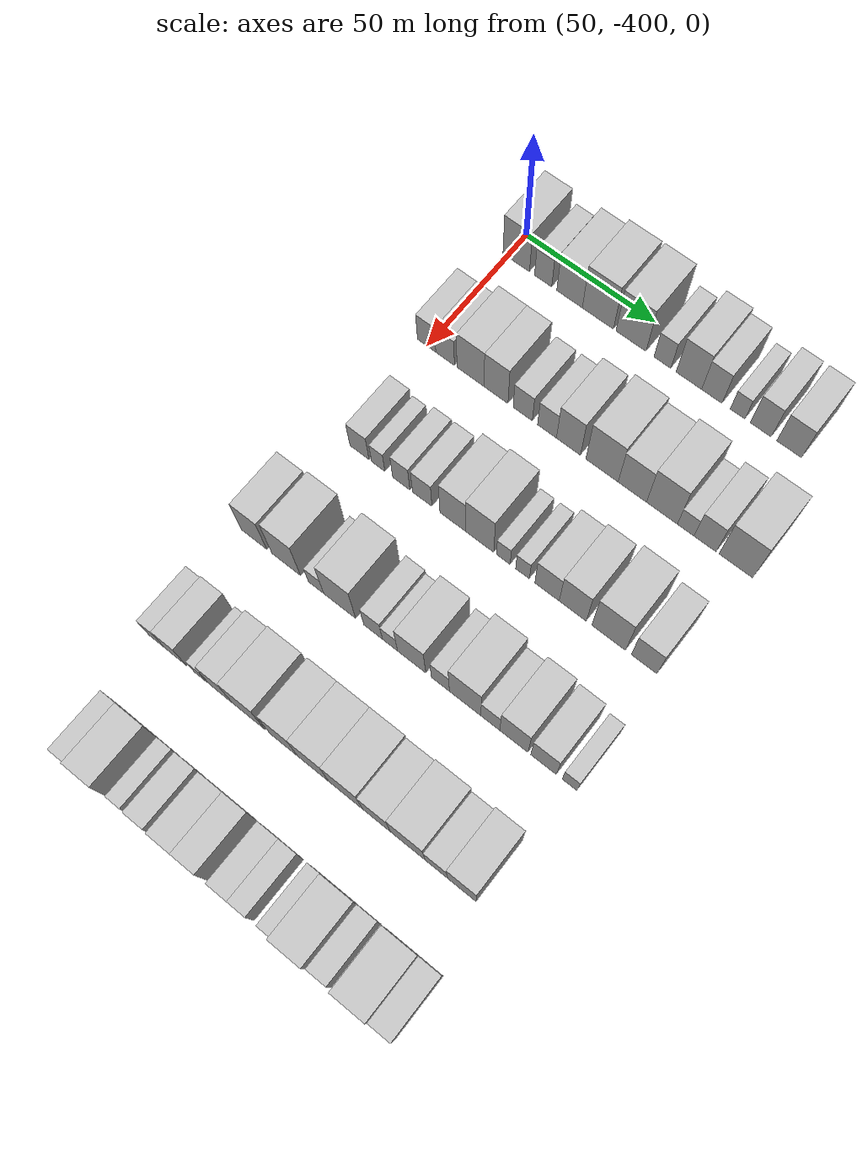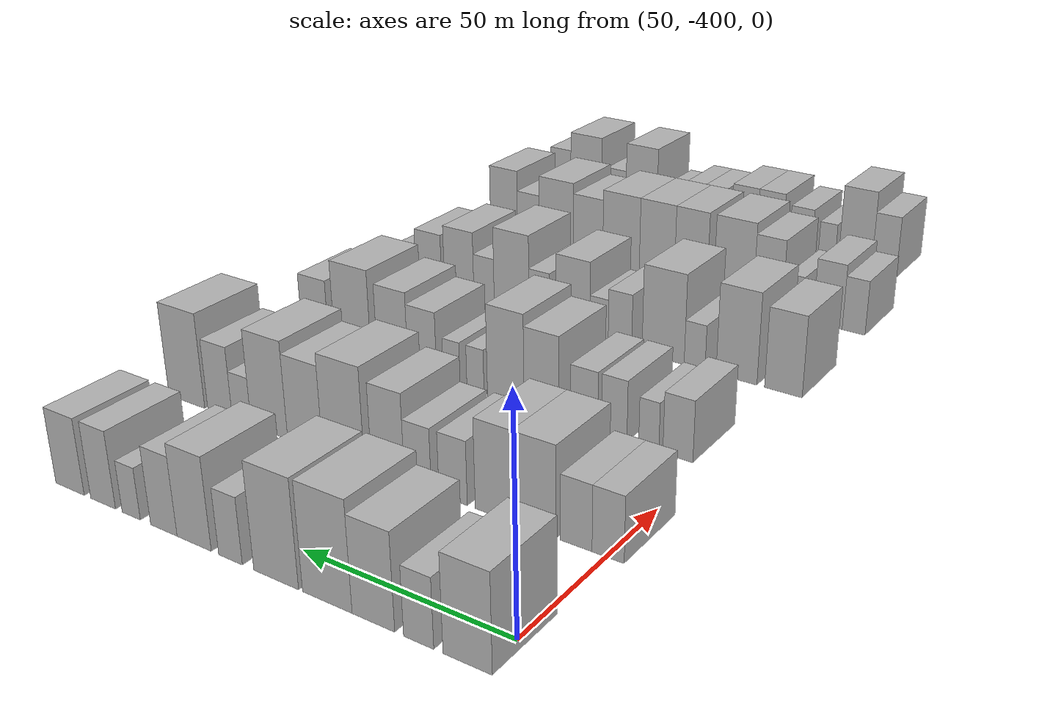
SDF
<sdf version="1.6">
 <world name="default">
  <model name="building_25">
   <static>1</static>
   <pose>50.0000 -396.6169 0 0.000000 0.000000 0.000000</pose>
   <link name="link">
    <pose>0 0 10.50 0 0 0</pose>
    <collision name="collision"><geometry><box><size>20.0000 10.4796 21.0000</size></box></geometry></collision>
    <visual name="visual">
     <cast_shadows>0</cast_shadows>
     <geometry><box><size>20.0000 10.4796 21.0000</size></box></geometry>
     <material>
      <script>
       <uri>model://HANNAS_wall/materials/scripts</uri>
       <uri>model://HANNAS_wall/materials/textures</uri>
       <name>vrc/HANNAS_wall</name>
      </script>
     </material>
    </visual>
   </link>
  </model>
  <model name="building_26">
   <static>1</static>
   <pose>50.0000 -386.0305 0 0.000000 0.000000 0.000000</pose>
   <link name="link">
    <pose>0 0 7.50 0 0 0</pose>
    <collision name="collision"><geometry><box><size>20.0000 6.6933 15.0000</size></box></geometry></collision>
    <visual name="visual">
     <cast_shadows>0</cast_shadows>
     <geometry><box><size>20.0000 6.6933 15.0000</size></box></geometry>
     <material>
      <script>
       <uri>model://HANNAS_wall/materials/scripts</uri>
       <uri>model://HANNAS_wall/materials/textures</uri>
       <name>vrc/HANNAS_wall</name>
      </script>
     </material>
    </visual>
   </link>
  </model>
  <model name="building_27">
   <static>1</static>
   <pose>50.0000 -375.7547 0 0.000000 0.000000 0.000000</pose>
   <link name="link">
    <pose>0 0 10.50 0 0 0</pose>
    <collision name="collision"><geometry><box><size>20.0000 9.8581 21.0000</size></box></geometry></collision>
    <visual name="visual">
     <cast_shadows>0</cast_shadows>
     <geometry><box><size>20.0000 9.8581 21.0000</size></box></geometry>
     <material>
      <script>
       <uri>model://HANNAS_wall/materials/scripts</uri>
       <uri>model://HANNAS_wall/materials/textures</uri>
       <name>vrc/HANNAS_wall</name>
      </script>
     </material>
    </visual>
   </link>
  </model>
  <model name="building_28">
   <static>1</static>
   <pose>50.0000 -364.8453 0 0.000000 0.000000 0.000000</pose>
   <link name="link">
    <pose>0 0 12.00 0 0 0</pose>
    <collision name="collision"><geometry><box><size>20.0000 11.9608 24.0000</size></box></geometry></collision>
    <visual name="visual">
     <cast_shadows>0</cast_shadows>
     <geometry><box><size>20.0000 11.9608 24.0000</size></box></geometry>
     <material>
      <script>
       <uri>model://HANNAS_wall/materials/scripts</uri>
       <uri>model://HANNAS_wall/materials/textures</uri>
       <name>vrc/HANNAS_wall</name>
      </script>
     </material>
    </visual>
   </link>
  </model>
  <model name="building_29">
   <static>1</static>
   <pose>50.0000 -352.1958 0 0.000000 0.000000 0.000000</pose>
   <link name="link">
    <pose>0 0 12.00 0 0 0</pose>
    <collision name="collision"><geometry><box><size>20.0000 11.3382 24.0000</size></box></geometry></collision>
    <visual name="visual">
     <cast_shadows>0</cast_shadows>
     <geometry><box><size>20.0000 11.3382 24.0000</size></box></geometry>
     <material>
      <script>
       <uri>model://HANNAS_wall/materials/scripts</uri>
       <uri>model://HANNAS_wall/materials/textures</uri>
       <name>vrc/HANNAS_wall</name>
      </script>
     </material>
    </visual>
   </link>
  </model>
  <model name="building_30">
   <static>1</static>
   <pose>50.0000 -340.3901 0 0.000000 0.000000 0.000000</pose>
   <link name="link">
    <pose>0 0 7.50 0 0 0</pose>
    <collision name="collision"><geometry><box><size>20.0000 6.2733 15.0000</size></box></geometry></collision>
    <visual name="visual">
     <cast_shadows>0</cast_shadows>
     <geometry><box><size>20.0000 6.2733 15.0000</size></box></geometry>
     <material>
      <script>
       <uri>model://HANNAS_wall/materials/scripts</uri>
       <uri>model://HANNAS_wall/materials/textures</uri>
       <name>vrc/HANNAS_wall</name>
      </script>
     </material>
    </visual>
   </link>
  </model>
  <model name="building_31">
   <static>1</static>
   <pose>50.0000 -330.5463 0 0.000000 0.000000 0.000000</pose>
   <link name="link">
    <pose>0 0 10.50 0 0 0</pose>
    <collision name="collision"><geometry><box><size>20.0000 9.4141 21.0000</size></box></geometry></collision>
    <visual name="visual">
     <cast_shadows>0</cast_shadows>
     <geometry><box><size>20.0000 9.4141 21.0000</size></box></geometry>
     <material>
      <script>
       <uri>model://HANNAS_wall/materials/scripts</uri>
       <uri>model://HANNAS_wall/materials/textures</uri>
       <name>vrc/HANNAS_wall</name>
      </script>
     </material>
    </visual>
   </link>
  </model>
  <model name="building_32">
   <static>1</static>
   <pose>50.0000 -322.0904 0 0.000000 0.000000 0.000000</pose>
   <link name="link">
    <pose>0 0 9.00 0 0 0</pose>
    <collision name="collision"><geometry><box><size>20.0000 7.4976 18.0000</size></box></geometry></collision>
    <visual name="visual">
     <cast_shadows>0</cast_shadows>
     <geometry><box><size>20.0000 7.4976 18.0000</size></box></geometry>
     <material>
      <script>
       <uri>model://HANNAS_wall/materials/scripts</uri>
       <uri>model://HANNAS_wall/materials/textures</uri>
       <name>vrc/HANNAS_wall</name>
      </script>
     </material>
    </visual>
   </link>
  </model>
  <model name="building_33">
   <static>1</static>
   <pose>50.0000 -312.6850 0 0.000000 0.000000 0.000000</pose>
   <link name="link">
    <pose>0 0 6.00 0 0 0</pose>
    <collision name="collision"><geometry><box><size>20.0000 5.3132 12.0000</size></box></geometry></collision>
    <visual name="visual">
     <cast_shadows>0</cast_shadows>
     <geometry><box><size>20.0000 5.3132 12.0000</size></box></geometry>
     <material>
      <script>
       <uri>model://HANNAS_wall/materials/scripts</uri>
       <uri>model://HANNAS_wall/materials/textures</uri>
       <name>vrc/HANNAS_wall</name>
      </script>
     </material>
    </visual>
   </link>
  </model>
  <model name="building_34">
   <static>1</static>
   <pose>50.0000 -304.2819 0 0.000000 0.000000 0.000000</pose>
   <link name="link">
    <pose>0 0 9.00 0 0 0</pose>
    <collision name="collision"><geometry><box><size>20.0000 7.4931 18.0000</size></box></geometry></collision>
    <visual name="visual">
     <cast_shadows>0</cast_shadows>
     <geometry><box><size>20.0000 7.4931 18.0000</size></box></geometry>
     <material>
      <script>
       <uri>model://HANNAS_wall/materials/scripts</uri>
       <uri>model://HANNAS_wall/materials/textures</uri>
       <name>vrc/HANNAS_wall</name>
      </script>
     </material>
    </visual>
   </link>
  </model>
  <model name="building_35">
   <static>1</static>
   <pose>50.0000 -294.1068 0 0.000000 0.000000 0.000000</pose>
   <link name="link">
    <pose>0 0 9.00 0 0 0</pose>
    <collision name="collision"><geometry><box><size>20.0000 8.8571 18.0000</size></box></geometry></collision>
    <visual name="visual">
     <cast_shadows>0</cast_shadows>
     <geometry><box><size>20.0000 8.8571 18.0000</size></box></geometry>
     <material>
      <script>
       <uri>model://HANNAS_wall/materials/scripts</uri>
       <uri>model://HANNAS_wall/materials/textures</uri>
       <name>vrc/HANNAS_wall</name>
      </script>
     </material>
    </visual>
   </link>
  </model>
  <model name="building_164">
   <static>1</static>
   <pose>90.0000 -400.3614 0 0.000000 0.000000 0.000000</pose>
   <link name="link">
    <pose>0 0 7.50 0 0 0</pose>
    <collision name="collision"><geometry><box><size>20.0000 7.2031 15.0000</size></box></geometry></collision>
    <visual name="visual">
     <cast_shadows>0</cast_shadows>
     <geometry><box><size>20.0000 7.2031 15.0000</size></box></geometry>
     <material>
      <script>
       <uri>model://HANNAS_wall/materials/scripts</uri>
       <uri>model://HANNAS_wall/materials/textures</uri>
       <name>vrc/HANNAS_wall</name>
      </script>
     </material>
    </visual>
   </link>
  </model>
  <model name="building_165">
   <static>1</static>
   <pose>90.0000 -393.1324 0 0.000000 0.000000 0.000000</pose>
   <link name="link">
    <pose>0 0 7.50 0 0 0</pose>
    <collision name="collision"><geometry><box><size>20.0000 7.2549 15.0000</size></box></geometry></collision>
    <visual name="visual">
     <cast_shadows>0</cast_shadows>
     <geometry><box><size>20.0000 7.2549 15.0000</size></box></geometry>
     <material>
      <script>
       <uri>model://HANNAS_wall/materials/scripts</uri>
       <uri>model://HANNAS_wall/materials/textures</uri>
       <name>vrc/HANNAS_wall</name>
      </script>
     </material>
    </visual>
   </link>
  </model>
  <model name="building_166">
   <static>1</static>
   <pose>90.0000 -383.2914 0 0.000000 0.000000 0.000000</pose>
   <link name="link">
    <pose>0 0 10.50 0 0 0</pose>
    <collision name="collision"><geometry><box><size>20.0000 10.4272 21.0000</size></box></geometry></collision>
    <visual name="visual">
     <cast_shadows>0</cast_shadows>
     <geometry><box><size>20.0000 10.4272 21.0000</size></box></geometry>
     <material>
      <script>
       <uri>model://HANNAS_wall/materials/scripts</uri>
       <uri>model://HANNAS_wall/materials/textures</uri>
       <name>vrc/HANNAS_wall</name>
      </script>
     </material>
    </visual>
   </link>
  </model>
  <model name="building_167">
   <static>1</static>
   <pose>90.0000 -373.4937 0 0.000000 0.000000 0.000000</pose>
   <link name="link">
    <pose>0 0 10.50 0 0 0</pose>
    <collision name="collision"><geometry><box><size>20.0000 9.1681 21.0000</size></box></geometry></collision>
    <visual name="visual">
     <cast_shadows>0</cast_shadows>
     <geometry><box><size>20.0000 9.1681 21.0000</size></box></geometry>
     <material>
      <script>
       <uri>model://HANNAS_wall/materials/scripts</uri>
       <uri>model://HANNAS_wall/materials/textures</uri>
       <name>vrc/HANNAS_wall</name>
      </script>
     </material>
    </visual>
   </link>
  </model>
  <model name="building_168">
   <static>1</static>
   <pose>90.0000 -363.2926 0 0.000000 0.000000 0.000000</pose>
   <link name="link">
    <pose>0 0 7.50 0 0 0</pose>
    <collision name="collision"><geometry><box><size>20.0000 7.2341 15.0000</size></box></geometry></collision>
    <visual name="visual">
     <cast_shadows>0</cast_shadows>
     <geometry><box><size>20.0000 7.2341 15.0000</size></box></geometry>
     <material>
      <script>
       <uri>model://HANNAS_wall/materials/scripts</uri>
       <uri>model://HANNAS_wall/materials/textures</uri>
       <name>vrc/HANNAS_wall</name>
      </script>
     </material>
    </visual>
   </link>
  </model>
  <model name="building_169">
   <static>1</static>
   <pose>90.0000 -354.1387 0 0.000000 0.000000 0.000000</pose>
   <link name="link">
    <pose>0 0 7.50 0 0 0</pose>
    <collision name="collision"><geometry><box><size>20.0000 7.0738 15.0000</size></box></geometry></collision>
    <visual name="visual">
     <cast_shadows>0</cast_shadows>
     <geometry><box><size>20.0000 7.0738 15.0000</size></box></geometry>
     <material>
      <script>
       <uri>model://HANNAS_wall/materials/scripts</uri>
       <uri>model://HANNAS_wall/materials/textures</uri>
       <name>vrc/HANNAS_wall</name>
      </script>
     </material>
    </visual>
   </link>
  </model>
  <model name="building_170">
   <static>1</static>
   <pose>90.0000 -346.1334 0 0.000000 0.000000 0.000000</pose>
   <link name="link">
    <pose>0 0 10.50 0 0 0</pose>
    <collision name="collision"><geometry><box><size>20.0000 8.9368 21.0000</size></box></geometry></collision>
    <visual name="visual">
     <cast_shadows>0</cast_shadows>
     <geometry><box><size>20.0000 8.9368 21.0000</size></box></geometry>
     <material>
      <script>
       <uri>model://HANNAS_wall/materials/scripts</uri>
       <uri>model://HANNAS_wall/materials/textures</uri>
       <name>vrc/HANNAS_wall</name>
      </script>
     </material>
    </visual>
   </link>
  </model>
  <model name="building_171">
   <static>1</static>
   <pose>90.0000 -333.7488 0 0.000000 0.000000 0.000000</pose>
   <link name="link">
    <pose>0 0 12.00 0 0 0</pose>
    <collision name="collision"><geometry><box><size>20.0000 11.8323 24.0000</size></box></geometry></collision>
    <visual name="visual">
     <cast_shadows>0</cast_shadows>
     <geometry><box><size>20.0000 11.8323 24.0000</size></box></geometry>
     <material>
      <script>
       <uri>model://HANNAS_wall/materials/scripts</uri>
       <uri>model://HANNAS_wall/materials/textures</uri>
       <name>vrc/HANNAS_wall</name>
      </script>
     </material>
    </visual>
   </link>
  </model>
  <model name="building_172">
   <static>1</static>
   <pose>90.0000 -322.6806 0 0.000000 0.000000 0.000000</pose>
   <link name="link">
    <pose>0 0 10.50 0 0 0</pose>
    <collision name="collision"><geometry><box><size>20.0000 10.3041 21.0000</size></box></geometry></collision>
    <visual name="visual">
     <cast_shadows>0</cast_shadows>
     <geometry><box><size>20.0000 10.3041 21.0000</size></box></geometry>
     <material>
      <script>
       <uri>model://HANNAS_wall/materials/scripts</uri>
       <uri>model://HANNAS_wall/materials/textures</uri>
       <name>vrc/HANNAS_wall</name>
      </script>
     </material>
    </visual>
   </link>
  </model>
  <model name="building_173">
   <static>1</static>
   <pose>90.0000 -311.9880 0 0.000000 0.000000 0.000000</pose>
   <link name="link">
    <pose>0 0 12.00 0 0 0</pose>
    <collision name="collision"><geometry><box><size>20.0000 11.0812 24.0000</size></box></geometry></collision>
    <visual name="visual">
     <cast_shadows>0</cast_shadows>
     <geometry><box><size>20.0000 11.0812 24.0000</size></box></geometry>
     <material>
      <script>
       <uri>model://HANNAS_wall/materials/scripts</uri>
       <uri>model://HANNAS_wall/materials/textures</uri>
       <name>vrc/HANNAS_wall</name>
      </script>
     </material>
    </visual>
   </link>
  </model>
  <model name="building_174">
   <static>1</static>
   <pose>90.0000 -303.4889 0 0.000000 0.000000 0.000000</pose>
   <link name="link">
    <pose>0 0 6.00 0 0 0</pose>
    <collision name="collision"><geometry><box><size>20.0000 5.9170 12.0000</size></box></geometry></collision>
    <visual name="visual">
     <cast_shadows>0</cast_shadows>
     <geometry><box><size>20.0000 5.9170 12.0000</size></box></geometry>
     <material>
      <script>
       <uri>model://HANNAS_wall/materials/scripts</uri>
       <uri>model://HANNAS_wall/materials/textures</uri>
       <name>vrc/HANNAS_wall</name>
      </script>
     </material>
    </visual>
   </link>
  </model>
  <model name="building_175">
   <static>1</static>
   <pose>90.0000 -296.6169 0 0.000000 0.000000 0.000000</pose>
   <link name="link">
    <pose>0 0 9.00 0 0 0</pose>
    <collision name="collision"><geometry><box><size>20.0000 7.8270 18.0000</size></box></geometry></collision>
    <visual name="visual">
     <cast_shadows>0</cast_shadows>
     <geometry><box><size>20.0000 7.8270 18.0000</size></box></geometry>
     <material>
      <script>
       <uri>model://HANNAS_wall/materials/scripts</uri>
       <uri>model://HANNAS_wall/materials/textures</uri>
       <name>vrc/HANNAS_wall</name>
      </script>
     </material>
    </visual>
   </link>
  </model>
  <model name="building_176">
   <static>1</static>
   <pose>90.0000 -285.8104 0 0.000000 0.000000 0.000000</pose>
   <link name="link">
    <pose>0 0 12.00 0 0 0</pose>
    <collision name="collision"><geometry><box><size>20.0000 11.7860 24.0000</size></box></geometry></collision>
    <visual name="visual">
     <cast_shadows>0</cast_shadows>
     <geometry><box><size>20.0000 11.7860 24.0000</size></box></geometry>
     <material>
      <script>
       <uri>model://HANNAS_wall/materials/scripts</uri>
       <uri>model://HANNAS_wall/materials/textures</uri>
       <name>vrc/HANNAS_wall</name>
      </script>
     </material>
    </visual>
   </link>
  </model>
  <model name="building_298">
   <static>1</static>
   <pose>130.0000 -393.6359 0 0.000000 0.000000 0.000000</pose>
   <link name="link">
    <pose>0 0 7.50 0 0 0</pose>
    <collision name="collision"><geometry><box><size>20.0000 7.3688 15.0000</size></box></geometry></collision>
    <visual name="visual">
     <cast_shadows>0</cast_shadows>
     <geometry><box><size>20.0000 7.3688 15.0000</size></box></geometry>
     <material>
      <script>
       <uri>model://HANNAS_wall/materials/scripts</uri>
       <uri>model://HANNAS_wall/materials/textures</uri>
       <name>vrc/HANNAS_wall</name>
      </script>
     </material>
    </visual>
   </link>
  </model>
  <model name="building_299">
   <static>1</static>
   <pose>130.0000 -386.4246 0 0.000000 0.000000 0.000000</pose>
   <link name="link">
    <pose>0 0 6.00 0 0 0</pose>
    <collision name="collision"><geometry><box><size>20.0000 5.0537 12.0000</size></box></geometry></collision>
    <visual name="visual">
     <cast_shadows>0</cast_shadows>
     <geometry><box><size>20.0000 5.0537 12.0000</size></box></geometry>
     <material>
      <script>
       <uri>model://HANNAS_wall/materials/scripts</uri>
       <uri>model://HANNAS_wall/materials/textures</uri>
       <name>vrc/HANNAS_wall</name>
      </script>
     </material>
    </visual>
   </link>
  </model>
  <model name="building_300">
   <static>1</static>
   <pose>130.0000 -377.6271 0 0.000000 0.000000 0.000000</pose>
   <link name="link">
    <pose>0 0 7.50 0 0 0</pose>
    <collision name="collision"><geometry><box><size>20.0000 6.5413 15.0000</size></box></geometry></collision>
    <visual name="visual">
     <cast_shadows>0</cast_shadows>
     <geometry><box><size>20.0000 6.5413 15.0000</size></box></geometry>
     <material>
      <script>
       <uri>model://HANNAS_wall/materials/scripts</uri>
       <uri>model://HANNAS_wall/materials/textures</uri>
       <name>vrc/HANNAS_wall</name>
      </script>
     </material>
    </visual>
   </link>
  </model>
  <model name="building_301">
   <static>1</static>
   <pose>130.0000 -369.7065 0 0.000000 0.000000 0.000000</pose>
   <link name="link">
    <pose>0 0 7.50 0 0 0</pose>
    <collision name="collision"><geometry><box><size>20.0000 7.2998 15.0000</size></box></geometry></collision>
    <visual name="visual">
     <cast_shadows>0</cast_shadows>
     <geometry><box><size>20.0000 7.2998 15.0000</size></box></geometry>
     <material>
      <script>
       <uri>model://HANNAS_wall/materials/scripts</uri>
       <uri>model://HANNAS_wall/materials/textures</uri>
       <name>vrc/HANNAS_wall</name>
      </script>
     </material>
    </visual>
   </link>
  </model>
  <model name="building_302">
   <static>1</static>
   <pose>130.0000 -358.2535 0 0.000000 0.000000 0.000000</pose>
   <link name="link">
    <pose>0 0 10.50 0 0 0</pose>
    <collision name="collision"><geometry><box><size>20.0000 9.6061 21.0000</size></box></geometry></collision>
    <visual name="visual">
     <cast_shadows>0</cast_shadows>
     <geometry><box><size>20.0000 9.6061 21.0000</size></box></geometry>
     <material>
      <script>
       <uri>model://HANNAS_wall/materials/scripts</uri>
       <uri>model://HANNAS_wall/materials/textures</uri>
       <name>vrc/HANNAS_wall</name>
      </script>
     </material>
    </visual>
   </link>
  </model>
  <model name="building_303">
   <static>1</static>
   <pose>130.0000 -348.2675 0 0.000000 0.000000 0.000000</pose>
   <link name="link">
    <pose>0 0 12.00 0 0 0</pose>
    <collision name="collision"><geometry><box><size>20.0000 10.3660 24.0000</size></box></geometry></collision>
    <visual name="visual">
     <cast_shadows>0</cast_shadows>
     <geometry><box><size>20.0000 10.3660 24.0000</size></box></geometry>
     <material>
      <script>
       <uri>model://HANNAS_wall/materials/scripts</uri>
       <uri>model://HANNAS_wall/materials/textures</uri>
       <name>vrc/HANNAS_wall</name>
      </script>
     </material>
    </visual>
   </link>
  </model>
  <model name="building_304">
   <static>1</static>
   <pose>130.0000 -339.5986 0 0.000000 0.000000 0.000000</pose>
   <link name="link">
    <pose>0 0 6.00 0 0 0</pose>
    <collision name="collision"><geometry><box><size>20.0000 4.9717 12.0000</size></box></geometry></collision>
    <visual name="visual">
     <cast_shadows>0</cast_shadows>
     <geometry><box><size>20.0000 4.9717 12.0000</size></box></geometry>
     <material>
      <script>
       <uri>model://HANNAS_wall/materials/scripts</uri>
       <uri>model://HANNAS_wall/materials/textures</uri>
       <name>vrc/HANNAS_wall</name>
      </script>
     </material>
    </visual>
   </link>
  </model>
  <model name="building_305">
   <static>1</static>
   <pose>130.0000 -332.6328 0 0.000000 0.000000 0.000000</pose>
   <link name="link">
    <pose>0 0 6.00 0 0 0</pose>
    <collision name="collision"><geometry><box><size>20.0000 4.9600 12.0000</size></box></geometry></collision>
    <visual name="visual">
     <cast_shadows>0</cast_shadows>
     <geometry><box><size>20.0000 4.9600 12.0000</size></box></geometry>
     <material>
      <script>
       <uri>model://HANNAS_wall/materials/scripts</uri>
       <uri>model://HANNAS_wall/materials/textures</uri>
       <name>vrc/HANNAS_wall</name>
      </script>
     </material>
    </visual>
   </link>
  </model>
  <model name="building_306">
   <static>1</static>
   <pose>130.0000 -323.7764 0 0.000000 0.000000 0.000000</pose>
   <link name="link">
    <pose>0 0 9.00 0 0 0</pose>
    <collision name="collision"><geometry><box><size>20.0000 8.7528 18.0000</size></box></geometry></collision>
    <visual name="visual">
     <cast_shadows>0</cast_shadows>
     <geometry><box><size>20.0000 8.7528 18.0000</size></box></geometry>
     <material>
      <script>
       <uri>model://HANNAS_wall/materials/scripts</uri>
       <uri>model://HANNAS_wall/materials/textures</uri>
       <name>vrc/HANNAS_wall</name>
      </script>
     </material>
    </visual>
   </link>
  </model>
  <model name="building_307">
   <static>1</static>
   <pose>130.0000 -314.5869 0 0.000000 0.000000 0.000000</pose>
   <link name="link">
    <pose>0 0 10.50 0 0 0</pose>
    <collision name="collision"><geometry><box><size>20.0000 9.6262 21.0000</size></box></geometry></collision>
    <visual name="visual">
     <cast_shadows>0</cast_shadows>
     <geometry><box><size>20.0000 9.6262 21.0000</size></box></geometry>
     <material>
      <script>
       <uri>model://HANNAS_wall/materials/scripts</uri>
       <uri>model://HANNAS_wall/materials/textures</uri>
       <name>vrc/HANNAS_wall</name>
      </script>
     </material>
    </visual>
   </link>
  </model>
  <model name="building_308">
   <static>1</static>
   <pose>130.0000 -301.8840 0 0.000000 0.000000 0.000000</pose>
   <link name="link">
    <pose>0 0 12.00 0 0 0</pose>
    <collision name="collision"><geometry><box><size>20.0000 11.7796 24.0000</size></box></geometry></collision>
    <visual name="visual">
     <cast_shadows>0</cast_shadows>
     <geometry><box><size>20.0000 11.7796 24.0000</size></box></geometry>
     <material>
      <script>
       <uri>model://HANNAS_wall/materials/scripts</uri>
       <uri>model://HANNAS_wall/materials/textures</uri>
       <name>vrc/HANNAS_wall</name>
      </script>
     </material>
    </visual>
   </link>
  </model>
  <model name="building_309">
   <static>1</static>
   <pose>130.0000 -289.5253 0 0.000000 0.000000 0.000000</pose>
   <link name="link">
    <pose>0 0 9.00 0 0 0</pose>
    <collision name="collision"><geometry><box><size>20.0000 8.9379 18.0000</size></box></geometry></collision>
    <visual name="visual">
     <cast_shadows>0</cast_shadows>
     <geometry><box><size>20.0000 8.9379 18.0000</size></box></geometry>
     <material>
      <script>
       <uri>model://HANNAS_wall/materials/scripts</uri>
       <uri>model://HANNAS_wall/materials/textures</uri>
       <name>vrc/HANNAS_wall</name>
      </script>
     </material>
    </visual>
   </link>
  </model>
  <model name="building_432">
   <static>1</static>
   <pose>170.0000 -399.9839 0 0.000000 0.000000 0.000000</pose>
   <link name="link">
    <pose>0 0 10.50 0 0 0</pose>
    <collision name="collision"><geometry><box><size>20.0000 9.6525 21.0000</size></box></geometry></collision>
    <visual name="visual">
     <cast_shadows>0</cast_shadows>
     <geometry><box><size>20.0000 9.6525 21.0000</size></box></geometry>
     <material>
      <script>
       <uri>model://HANNAS_wall/materials/scripts</uri>
       <uri>model://HANNAS_wall/materials/textures</uri>
       <name>vrc/HANNAS_wall</name>
      </script>
     </material>
    </visual>
   </link>
  </model>
  <model name="building_433">
   <static>1</static>
   <pose>170.0000 -387.7135 0 0.000000 0.000000 0.000000</pose>
   <link name="link">
    <pose>0 0 12.00 0 0 0</pose>
    <collision name="collision"><geometry><box><size>20.0000 10.8884 24.0000</size></box></geometry></collision>
    <visual name="visual">
     <cast_shadows>0</cast_shadows>
     <geometry><box><size>20.0000 10.8884 24.0000</size></box></geometry>
     <material>
      <script>
       <uri>model://HANNAS_wall/materials/scripts</uri>
       <uri>model://HANNAS_wall/materials/textures</uri>
       <name>vrc/HANNAS_wall</name>
      </script>
     </material>
    </visual>
   </link>
  </model>
  <model name="building_434">
   <static>1</static>
   <pose>170.0000 -376.3975 0 0.000000 0.000000 0.000000</pose>
   <link name="link">
    <pose>0 0 6.00 0 0 0</pose>
    <collision name="collision"><geometry><box><size>20.0000 5.7434 12.0000</size></box></geometry></collision>
    <visual name="visual">
     <cast_shadows>0</cast_shadows>
     <geometry><box><size>20.0000 5.7434 12.0000</size></box></geometry>
     <material>
      <script>
       <uri>model://HANNAS_wall/materials/scripts</uri>
       <uri>model://HANNAS_wall/materials/textures</uri>
       <name>vrc/HANNAS_wall</name>
      </script>
     </material>
    </visual>
   </link>
  </model>
  <model name="building_435">
   <static>1</static>
   <pose>170.0000 -367.5731 0 0.000000 0.000000 0.000000</pose>
   <link name="link">
    <pose>0 0 12.00 0 0 0</pose>
    <collision name="collision"><geometry><box><size>20.0000 11.9054 24.0000</size></box></geometry></collision>
    <visual name="visual">
     <cast_shadows>0</cast_shadows>
     <geometry><box><size>20.0000 11.9054 24.0000</size></box></geometry>
     <material>
      <script>
       <uri>model://HANNAS_wall/materials/scripts</uri>
       <uri>model://HANNAS_wall/materials/textures</uri>
       <name>vrc/HANNAS_wall</name>
      </script>
     </material>
    </visual>
   </link>
  </model>
  <model name="building_436">
   <static>1</static>
   <pose>170.0000 -355.1822 0 0.000000 0.000000 0.000000</pose>
   <link name="link">
    <pose>0 0 7.50 0 0 0</pose>
    <collision name="collision"><geometry><box><size>20.0000 6.8765 15.0000</size></box></geometry></collision>
    <visual name="visual">
     <cast_shadows>0</cast_shadows>
     <geometry><box><size>20.0000 6.8765 15.0000</size></box></geometry>
     <material>
      <script>
       <uri>model://HANNAS_wall/materials/scripts</uri>
       <uri>model://HANNAS_wall/materials/textures</uri>
       <name>vrc/HANNAS_wall</name>
      </script>
     </material>
    </visual>
   </link>
  </model>
  <model name="building_437">
   <static>1</static>
   <pose>170.0000 -348.9989 0 0.000000 0.000000 0.000000</pose>
   <link name="link">
    <pose>0 0 6.00 0 0 0</pose>
    <collision name="collision"><geometry><box><size>20.0000 5.4899 12.0000</size></box></geometry></collision>
    <visual name="visual">
     <cast_shadows>0</cast_shadows>
     <geometry><box><size>20.0000 5.4899 12.0000</size></box></geometry>
     <material>
      <script>
       <uri>model://HANNAS_wall/materials/scripts</uri>
       <uri>model://HANNAS_wall/materials/textures</uri>
       <name>vrc/HANNAS_wall</name>
      </script>
     </material>
    </visual>
   </link>
  </model>
  <model name="building_438">
   <static>1</static>
   <pose>170.0000 -341.1307 0 0.000000 0.000000 0.000000</pose>
   <link name="link">
    <pose>0 0 10.50 0 0 0</pose>
    <collision name="collision"><geometry><box><size>20.0000 10.2465 21.0000</size></box></geometry></collision>
    <visual name="visual">
     <cast_shadows>0</cast_shadows>
     <geometry><box><size>20.0000 10.2465 21.0000</size></box></geometry>
     <material>
      <script>
       <uri>model://HANNAS_wall/materials/scripts</uri>
       <uri>model://HANNAS_wall/materials/textures</uri>
       <name>vrc/HANNAS_wall</name>
      </script>
     </material>
    </visual>
   </link>
  </model>
  <model name="building_439">
   <static>1</static>
   <pose>170.0000 -330.7905 0 0.000000 0.000000 0.000000</pose>
   <link name="link">
    <pose>0 0 7.50 0 0 0</pose>
    <collision name="collision"><geometry><box><size>20.0000 6.4338 15.0000</size></box></geometry></collision>
    <visual name="visual">
     <cast_shadows>0</cast_shadows>
     <geometry><box><size>20.0000 6.4338 15.0000</size></box></geometry>
     <material>
      <script>
       <uri>model://HANNAS_wall/materials/scripts</uri>
       <uri>model://HANNAS_wall/materials/textures</uri>
       <name>vrc/HANNAS_wall</name>
      </script>
     </material>
    </visual>
   </link>
  </model>
  <model name="building_440">
   <static>1</static>
   <pose>170.0000 -322.0072 0 0.000000 0.000000 0.000000</pose>
   <link name="link">
    <pose>0 0 12.00 0 0 0</pose>
    <collision name="collision"><geometry><box><size>20.0000 11.1328 24.0000</size></box></geometry></collision>
    <visual name="visual">
     <cast_shadows>0</cast_shadows>
     <geometry><box><size>20.0000 11.1328 24.0000</size></box></geometry>
     <material>
      <script>
       <uri>model://HANNAS_wall/materials/scripts</uri>
       <uri>model://HANNAS_wall/materials/textures</uri>
       <name>vrc/HANNAS_wall</name>
      </script>
     </material>
    </visual>
   </link>
  </model>
  <model name="building_441">
   <static>1</static>
   <pose>170.0000 -313.1108 0 0.000000 0.000000 0.000000</pose>
   <link name="link">
    <pose>0 0 7.50 0 0 0</pose>
    <collision name="collision"><geometry><box><size>20.0000 6.6600 15.0000</size></box></geometry></collision>
    <visual name="visual">
     <cast_shadows>0</cast_shadows>
     <geometry><box><size>20.0000 6.6600 15.0000</size></box></geometry>
     <material>
      <script>
       <uri>model://HANNAS_wall/materials/scripts</uri>
       <uri>model://HANNAS_wall/materials/textures</uri>
       <name>vrc/HANNAS_wall</name>
      </script>
     </material>
    </visual>
   </link>
  </model>
  <model name="building_442">
   <static>1</static>
   <pose>170.0000 -304.8831 0 0.000000 0.000000 0.000000</pose>
   <link name="link">
    <pose>0 0 10.50 0 0 0</pose>
    <collision name="collision"><geometry><box><size>20.0000 9.7954 21.0000</size></box></geometry></collision>
    <visual name="visual">
     <cast_shadows>0</cast_shadows>
     <geometry><box><size>20.0000 9.7954 21.0000</size></box></geometry>
     <material>
      <script>
       <uri>model://HANNAS_wall/materials/scripts</uri>
       <uri>model://HANNAS_wall/materials/textures</uri>
       <name>vrc/HANNAS_wall</name>
      </script>
     </material>
    </visual>
   </link>
  </model>
  <model name="building_443">
   <static>1</static>
   <pose>170.0000 -294.5924 0 0.000000 0.000000 0.000000</pose>
   <link name="link">
    <pose>0 0 9.00 0 0 0</pose>
    <collision name="collision"><geometry><box><size>20.0000 8.7862 18.0000</size></box></geometry></collision>
    <visual name="visual">
     <cast_shadows>0</cast_shadows>
     <geometry><box><size>20.0000 8.7862 18.0000</size></box></geometry>
     <material>
      <script>
       <uri>model://HANNAS_wall/materials/scripts</uri>
       <uri>model://HANNAS_wall/materials/textures</uri>
       <name>vrc/HANNAS_wall</name>
      </script>
     </material>
    </visual>
   </link>
  </model>
  <model name="building_444">
   <static>1</static>
   <pose>170.0000 -285.6811 0 0.000000 0.000000 0.000000</pose>
   <link name="link">
    <pose>0 0 6.00 0 0 0</pose>
    <collision name="collision"><geometry><box><size>20.0000 5.0364 12.0000</size></box></geometry></collision>
    <visual name="visual">
     <cast_shadows>0</cast_shadows>
     <geometry><box><size>20.0000 5.0364 12.0000</size></box></geometry>
     <material>
      <script>
       <uri>model://HANNAS_wall/materials/scripts</uri>
       <uri>model://HANNAS_wall/materials/textures</uri>
       <name>vrc/HANNAS_wall</name>
      </script>
     </material>
    </visual>
   </link>
  </model>
  <model name="building_568">
   <static>1</static>
   <pose>210.0000 -401.2134 0 0.000000 0.000000 0.000000</pose>
   <link name="link">
    <pose>0 0 7.50 0 0 0</pose>
    <collision name="collision"><geometry><box><size>20.0000 6.2386 15.0000</size></box></geometry></collision>
    <visual name="visual">
     <cast_shadows>0</cast_shadows>
     <geometry><box><size>20.0000 6.2386 15.0000</size></box></geometry>
     <material>
      <script>
       <uri>model://HANNAS_wall/materials/scripts</uri>
       <uri>model://HANNAS_wall/materials/textures</uri>
       <name>vrc/HANNAS_wall</name>
      </script>
     </material>
    </visual>
   </link>
  </model>
  <model name="building_569">
   <static>1</static>
   <pose>210.0000 -394.0385 0 0.000000 0.000000 0.000000</pose>
   <link name="link">
    <pose>0 0 9.00 0 0 0</pose>
    <collision name="collision"><geometry><box><size>20.0000 8.1111 18.0000</size></box></geometry></collision>
    <visual name="visual">
     <cast_shadows>0</cast_shadows>
     <geometry><box><size>20.0000 8.1111 18.0000</size></box></geometry>
     <material>
      <script>
       <uri>model://HANNAS_wall/materials/scripts</uri>
       <uri>model://HANNAS_wall/materials/textures</uri>
       <name>vrc/HANNAS_wall</name>
      </script>
     </material>
    </visual>
   </link>
  </model>
  <model name="building_570">
   <static>1</static>
   <pose>210.0000 -384.5778 0 0.000000 0.000000 0.000000</pose>
   <link name="link">
    <pose>0 0 6.00 0 0 0</pose>
    <collision name="collision"><geometry><box><size>20.0000 4.8103 12.0000</size></box></geometry></collision>
    <visual name="visual">
     <cast_shadows>0</cast_shadows>
     <geometry><box><size>20.0000 4.8103 12.0000</size></box></geometry>
     <material>
      <script>
       <uri>model://HANNAS_wall/materials/scripts</uri>
       <uri>model://HANNAS_wall/materials/textures</uri>
       <name>vrc/HANNAS_wall</name>
      </script>
     </material>
    </visual>
   </link>
  </model>
  <model name="building_571">
   <static>1</static>
   <pose>210.0000 -376.9190 0 0.000000 0.000000 0.000000</pose>
   <link name="link">
    <pose>0 0 10.50 0 0 0</pose>
    <collision name="collision"><geometry><box><size>20.0000 8.5075 21.0000</size></box></geometry></collision>
    <visual name="visual">
     <cast_shadows>0</cast_shadows>
     <geometry><box><size>20.0000 8.5075 21.0000</size></box></geometry>
     <material>
      <script>
       <uri>model://HANNAS_wall/materials/scripts</uri>
       <uri>model://HANNAS_wall/materials/textures</uri>
       <name>vrc/HANNAS_wall</name>
      </script>
     </material>
    </visual>
   </link>
  </model>
  <model name="building_572">
   <static>1</static>
   <pose>210.0000 -366.7289 0 0.000000 0.000000 0.000000</pose>
   <link name="link">
    <pose>0 0 12.00 0 0 0</pose>
    <collision name="collision"><geometry><box><size>20.0000 11.8727 24.0000</size></box></geometry></collision>
    <visual name="visual">
     <cast_shadows>0</cast_shadows>
     <geometry><box><size>20.0000 11.8727 24.0000</size></box></geometry>
     <material>
      <script>
       <uri>model://HANNAS_wall/materials/scripts</uri>
       <uri>model://HANNAS_wall/materials/textures</uri>
       <name>vrc/HANNAS_wall</name>
      </script>
     </material>
    </visual>
   </link>
  </model>
  <model name="building_573">
   <static>1</static>
   <pose>210.0000 -353.7338 0 0.000000 0.000000 0.000000</pose>
   <link name="link">
    <pose>0 0 12.00 0 0 0</pose>
    <collision name="collision"><geometry><box><size>20.0000 10.1175 24.0000</size></box></geometry></collision>
    <visual name="visual">
     <cast_shadows>0</cast_shadows>
     <geometry><box><size>20.0000 10.1175 24.0000</size></box></geometry>
     <material>
      <script>
       <uri>model://HANNAS_wall/materials/scripts</uri>
       <uri>model://HANNAS_wall/materials/textures</uri>
       <name>vrc/HANNAS_wall</name>
      </script>
     </material>
    </visual>
   </link>
  </model>
  <model name="building_574">
   <static>1</static>
   <pose>210.0000 -343.1055 0 0.000000 0.000000 0.000000</pose>
   <link name="link">
    <pose>0 0 12.00 0 0 0</pose>
    <collision name="collision"><geometry><box><size>20.0000 11.1389 24.0000</size></box></geometry></collision>
    <visual name="visual">
     <cast_shadows>0</cast_shadows>
     <geometry><box><size>20.0000 11.1389 24.0000</size></box></geometry>
     <material>
      <script>
       <uri>model://HANNAS_wall/materials/scripts</uri>
       <uri>model://HANNAS_wall/materials/textures</uri>
       <name>vrc/HANNAS_wall</name>
      </script>
     </material>
    </visual>
   </link>
  </model>
  <model name="building_575">
   <static>1</static>
   <pose>210.0000 -331.5579 0 0.000000 0.000000 0.000000</pose>
   <link name="link">
    <pose>0 0 12.00 0 0 0</pose>
    <collision name="collision"><geometry><box><size>20.0000 11.9564 24.0000</size></box></geometry></collision>
    <visual name="visual">
     <cast_shadows>0</cast_shadows>
     <geometry><box><size>20.0000 11.9564 24.0000</size></box></geometry>
     <material>
      <script>
       <uri>model://HANNAS_wall/materials/scripts</uri>
       <uri>model://HANNAS_wall/materials/textures</uri>
       <name>vrc/HANNAS_wall</name>
      </script>
     </material>
    </visual>
   </link>
  </model>
  <model name="building_576">
   <static>1</static>
   <pose>210.0000 -320.6577 0 0.000000 0.000000 0.000000</pose>
   <link name="link">
    <pose>0 0 10.50 0 0 0</pose>
    <collision name="collision"><geometry><box><size>20.0000 9.8440 21.0000</size></box></geometry></collision>
    <visual name="visual">
     <cast_shadows>0</cast_shadows>
     <geometry><box><size>20.0000 9.8440 21.0000</size></box></geometry>
     <material>
      <script>
       <uri>model://HANNAS_wall/materials/scripts</uri>
       <uri>model://HANNAS_wall/materials/textures</uri>
       <name>vrc/HANNAS_wall</name>
      </script>
     </material>
    </visual>
   </link>
  </model>
  <model name="building_577">
   <static>1</static>
   <pose>210.0000 -309.7999 0 0.000000 0.000000 0.000000</pose>
   <link name="link">
    <pose>0 0 12.00 0 0 0</pose>
    <collision name="collision"><geometry><box><size>20.0000 11.8716 24.0000</size></box></geometry></collision>
    <visual name="visual">
     <cast_shadows>0</cast_shadows>
     <geometry><box><size>20.0000 11.8716 24.0000</size></box></geometry>
     <material>
      <script>
       <uri>model://HANNAS_wall/materials/scripts</uri>
       <uri>model://HANNAS_wall/materials/textures</uri>
       <name>vrc/HANNAS_wall</name>
      </script>
     </material>
    </visual>
   </link>
  </model>
  <model name="building_578">
   <static>1</static>
   <pose>210.0000 -300.0495 0 0.000000 0.000000 0.000000</pose>
   <link name="link">
    <pose>0 0 9.00 0 0 0</pose>
    <collision name="collision"><geometry><box><size>20.0000 7.6292 18.0000</size></box></geometry></collision>
    <visual name="visual">
     <cast_shadows>0</cast_shadows>
     <geometry><box><size>20.0000 7.6292 18.0000</size></box></geometry>
     <material>
      <script>
       <uri>model://HANNAS_wall/materials/scripts</uri>
       <uri>model://HANNAS_wall/materials/textures</uri>
       <name>vrc/HANNAS_wall</name>
      </script>
     </material>
    </visual>
   </link>
  </model>
  <model name="building_579">
   <static>1</static>
   <pose>210.0000 -291.4091 0 0.000000 0.000000 0.000000</pose>
   <link name="link">
    <pose>0 0 12.00 0 0 0</pose>
    <collision name="collision"><geometry><box><size>20.0000 9.6516 24.0000</size></box></geometry></collision>
    <visual name="visual">
     <cast_shadows>0</cast_shadows>
     <geometry><box><size>20.0000 9.6516 24.0000</size></box></geometry>
     <material>
      <script>
       <uri>model://HANNAS_wall/materials/scripts</uri>
       <uri>model://HANNAS_wall/materials/textures</uri>
       <name>vrc/HANNAS_wall</name>
      </script>
     </material>
    </visual>
   </link>
  </model>
  <model name="building_713">
   <static>1</static>
   <pose>250.0000 -393.8523 0 0.000000 0.000000 0.000000</pose>
   <link name="link">
    <pose>0 0 9.00 0 0 0</pose>
    <collision name="collision"><geometry><box><size>20.0000 7.3598 18.0000</size></box></geometry></collision>
    <visual name="visual">
     <cast_shadows>0</cast_shadows>
     <geometry><box><size>20.0000 7.3598 18.0000</size></box></geometry>
     <material>
      <script>
       <uri>model://HANNAS_wall/materials/scripts</uri>
       <uri>model://HANNAS_wall/materials/textures</uri>
       <name>vrc/HANNAS_wall</name>
      </script>
     </material>
    </visual>
   </link>
  </model>
  <model name="building_714">
   <static>1</static>
   <pose>250.0000 -385.1721 0 0.000000 0.000000 0.000000</pose>
   <link name="link">
    <pose>0 0 12.00 0 0 0</pose>
    <collision name="collision"><geometry><box><size>20.0000 10.0006 24.0000</size></box></geometry></collision>
    <visual name="visual">
     <cast_shadows>0</cast_shadows>
     <geometry><box><size>20.0000 10.0006 24.0000</size></box></geometry>
     <material>
      <script>
       <uri>model://HANNAS_wall/materials/scripts</uri>
       <uri>model://HANNAS_wall/materials/textures</uri>
       <name>vrc/HANNAS_wall</name>
      </script>
     </material>
    </visual>
   </link>
  </model>
  <model name="building_715">
   <static>1</static>
   <pose>250.0000 -376.5562 0 0.000000 0.000000 0.000000</pose>
   <link name="link">
    <pose>0 0 6.00 0 0 0</pose>
    <collision name="collision"><geometry><box><size>20.0000 5.2311 12.0000</size></box></geometry></collision>
    <visual name="visual">
     <cast_shadows>0</cast_shadows>
     <geometry><box><size>20.0000 5.2311 12.0000</size></box></geometry>
     <material>
      <script>
       <uri>model://HANNAS_wall/materials/scripts</uri>
       <uri>model://HANNAS_wall/materials/textures</uri>
       <name>vrc/HANNAS_wall</name>
      </script>
     </material>
    </visual>
   </link>
  </model>
  <model name="building_716">
   <static>1</static>
   <pose>250.0000 -368.3625 0 0.000000 0.000000 0.000000</pose>
   <link name="link">
    <pose>0 0 7.50 0 0 0</pose>
    <collision name="collision"><geometry><box><size>20.0000 7.1564 15.0000</size></box></geometry></collision>
    <visual name="visual">
     <cast_shadows>0</cast_shadows>
     <geometry><box><size>20.0000 7.1564 15.0000</size></box></geometry>
     <material>
      <script>
       <uri>model://HANNAS_wall/materials/scripts</uri>
       <uri>model://HANNAS_wall/materials/textures</uri>
       <name>vrc/HANNAS_wall</name>
      </script>
     </material>
    </visual>
   </link>
  </model>
  <model name="building_717">
   <static>1</static>
   <pose>250.0000 -358.6005 0 0.000000 0.000000 0.000000</pose>
   <link name="link">
    <pose>0 0 9.00 0 0 0</pose>
    <collision name="collision"><geometry><box><size>20.0000 8.3675 18.0000</size></box></geometry></collision>
    <visual name="visual">
     <cast_shadows>0</cast_shadows>
     <geometry><box><size>20.0000 8.3675 18.0000</size></box></geometry>
     <material>
      <script>
       <uri>model://HANNAS_wall/materials/scripts</uri>
       <uri>model://HANNAS_wall/materials/textures</uri>
       <name>vrc/HANNAS_wall</name>
      </script>
     </material>
    </visual>
   </link>
  </model>
  <model name="building_718">
   <static>1</static>
   <pose>250.0000 -350.2028 0 0.000000 0.000000 0.000000</pose>
   <link name="link">
    <pose>0 0 9.00 0 0 0</pose>
    <collision name="collision"><geometry><box><size>20.0000 8.4279 18.0000</size></box></geometry></collision>
    <visual name="visual">
     <cast_shadows>0</cast_shadows>
     <geometry><box><size>20.0000 8.4279 18.0000</size></box></geometry>
     <material>
      <script>
       <uri>model://HANNAS_wall/materials/scripts</uri>
       <uri>model://HANNAS_wall/materials/textures</uri>
       <name>vrc/HANNAS_wall</name>
      </script>
     </material>
    </visual>
   </link>
  </model>
  <model name="building_719">
   <static>1</static>
   <pose>250.0000 -339.3708 0 0.000000 0.000000 0.000000</pose>
   <link name="link">
    <pose>0 0 7.50 0 0 0</pose>
    <collision name="collision"><geometry><box><size>20.0000 7.2361 15.0000</size></box></geometry></collision>
    <visual name="visual">
     <cast_shadows>0</cast_shadows>
     <geometry><box><size>20.0000 7.2361 15.0000</size></box></geometry>
     <material>
      <script>
       <uri>model://HANNAS_wall/materials/scripts</uri>
       <uri>model://HANNAS_wall/materials/textures</uri>
       <name>vrc/HANNAS_wall</name>
      </script>
     </material>
    </visual>
   </link>
  </model>
  <model name="building_720">
   <static>1</static>
   <pose>250.0000 -332.6198 0 0.000000 0.000000 0.000000</pose>
   <link name="link">
    <pose>0 0 7.50 0 0 0</pose>
    <collision name="collision"><geometry><box><size>20.0000 6.2659 15.0000</size></box></geometry></collision>
    <visual name="visual">
     <cast_shadows>0</cast_shadows>
     <geometry><box><size>20.0000 6.2659 15.0000</size></box></geometry>
     <material>
      <script>
       <uri>model://HANNAS_wall/materials/scripts</uri>
       <uri>model://HANNAS_wall/materials/textures</uri>
       <name>vrc/HANNAS_wall</name>
      </script>
     </material>
    </visual>
   </link>
  </model>
  <model name="building_721">
   <static>1</static>
   <pose>250.0000 -323.9974 0 0.000000 0.000000 0.000000</pose>
   <link name="link">
    <pose>0 0 6.00 0 0 0</pose>
    <collision name="collision"><geometry><box><size>20.0000 4.9787 12.0000</size></box></geometry></collision>
    <visual name="visual">
     <cast_shadows>0</cast_shadows>
     <geometry><box><size>20.0000 4.9787 12.0000</size></box></geometry>
     <material>
      <script>
       <uri>model://HANNAS_wall/materials/scripts</uri>
       <uri>model://HANNAS_wall/materials/textures</uri>
       <name>vrc/HANNAS_wall</name>
      </script>
     </material>
    </visual>
   </link>
  </model>
  <model name="building_722">
   <static>1</static>
   <pose>250.0000 -314.9842 0 0.000000 0.000000 0.000000</pose>
   <link name="link">
    <pose>0 0 12.00 0 0 0</pose>
    <collision name="collision"><geometry><box><size>20.0000 11.0478 24.0000</size></box></geometry></collision>
    <visual name="visual">
     <cast_shadows>0</cast_shadows>
     <geometry><box><size>20.0000 11.0478 24.0000</size></box></geometry>
     <material>
      <script>
       <uri>model://HANNAS_wall/materials/scripts</uri>
       <uri>model://HANNAS_wall/materials/textures</uri>
       <name>vrc/HANNAS_wall</name>
      </script>
     </material>
    </visual>
   </link>
  </model>
  <model name="building_723">
   <static>1</static>
   <pose>250.0000 -306.0341 0 0.000000 0.000000 0.000000</pose>
   <link name="link">
    <pose>0 0 7.50 0 0 0</pose>
    <collision name="collision"><geometry><box><size>20.0000 6.8524 15.0000</size></box></geometry></collision>
    <visual name="visual">
     <cast_shadows>0</cast_shadows>
     <geometry><box><size>20.0000 6.8524 15.0000</size></box></geometry>
     <material>
      <script>
       <uri>model://HANNAS_wall/materials/scripts</uri>
       <uri>model://HANNAS_wall/materials/textures</uri>
       <name>vrc/HANNAS_wall</name>
      </script>
     </material>
    </visual>
   </link>
  </model>
  <model name="building_724">
   <static>1</static>
   <pose>250.0000 -294.8666 0 0.000000 0.000000 0.000000</pose>
   <link name="link">
    <pose>0 0 12.00 0 0 0</pose>
    <collision name="collision"><geometry><box><size>20.0000 11.4826 24.0000</size></box></geometry></collision>
    <visual name="visual">
     <cast_shadows>0</cast_shadows>
     <geometry><box><size>20.0000 11.4826 24.0000</size></box></geometry>
     <material>
      <script>
       <uri>model://HANNAS_wall/materials/scripts</uri>
       <uri>model://HANNAS_wall/materials/textures</uri>
       <name>vrc/HANNAS_wall</name>
      </script>
     </material>
    </visual>
   </link>
  </model>
  <model name="building_725">
   <static>1</static>
   <pose>250.0000 -285.3764 0 0.000000 0.000000 0.000000</pose>
   <link name="link">
    <pose>0 0 9.00 0 0 0</pose>
    <collision name="collision"><geometry><box><size>20.0000 7.4977 18.0000</size></box></geometry></collision>
    <visual name="visual">
     <cast_shadows>0</cast_shadows>
     <geometry><box><size>20.0000 7.4977 18.0000</size></box></geometry>
     <material>
      <script>
       <uri>model://HANNAS_wall/materials/scripts</uri>
       <uri>model://HANNAS_wall/materials/textures</uri>
       <name>vrc/HANNAS_wall</name>
      </script>
     </material>
    </visual>
   </link>
  </model>
 </world>
</sdf>
